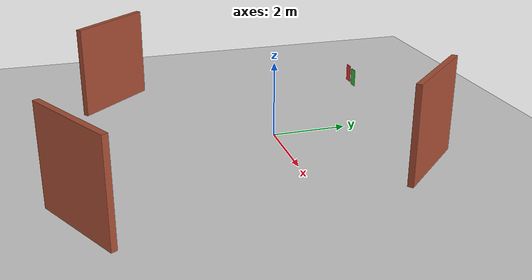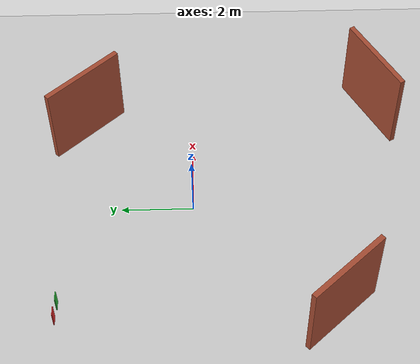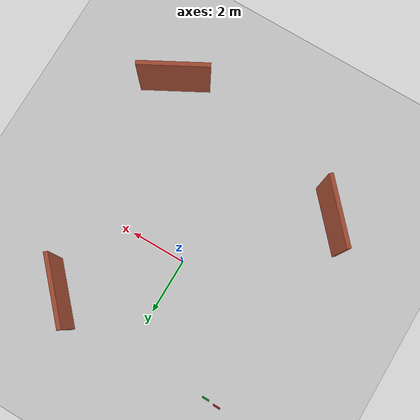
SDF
<sdf version="1.6">
 <world name="default">
  <light name="sun" type="directional">
   <pose>0 0 10 0 -0 0</pose>
   <diffuse>0.8 0.8 0.8 1</diffuse>
   <specular>0.2 0.2 0.2 1</specular>
   <attenuation>
    <range>1000</range>
    <constant>0.9</constant>
    <linear>0.01</linear>
    <quadratic>0.001</quadratic>
   </attenuation>
   <direction>-0.5 0.1 -0.9</direction>
  </light>
  <model name="ground_plane">
   <static>1</static>
   <link name="link">
    <collision name="collision">
     <geometry><plane><normal>0 0 1</normal><size>100 100</size></plane></geometry>
     <surface>
      <contact><collide_bitmask>65535</collide_bitmask></contact>
      <friction><ode><mu>100</mu><mu2>50</mu2></ode></friction>
     </surface>
    </collision>
    <visual name="visual">
     <cast_shadows>0</cast_shadows>
     <geometry><plane><normal>0 0 1</normal><size>100 100</size></plane></geometry>
     <material>
      <script><uri>file://media/materials/scripts/gazebo.material</uri><name>Gazebo/Grey</name></script>
     </material>
    </visual>
   </link>
  </model>
  <gravity>0 0 -9.8</gravity>
  <magnetic_field>6e-06 2.3e-05 -4.2e-05</magnetic_field>
  <atmosphere type="adiabatic"/>
  <physics name="default_physics" default="0" type="ode">
   <max_step_size>0.001</max_step_size>
   <real_time_factor>1</real_time_factor>
   <real_time_update_rate>1000</real_time_update_rate>
  </physics>
  <scene><ambient>0.4 0.4 0.4 1</ambient><background>0.7 0.7 0.7 1</background><shadows>1</shadows></scene>
  <audio><device>default</device></audio>
  <spherical_coordinates>
   <surface_model>EARTH_WGS84</surface_model>
   <latitude_deg>0</latitude_deg>
   <longitude_deg>0</longitude_deg>
   <elevation>0</elevation>
   <heading_deg>0</heading_deg>
  </spherical_coordinates>
  <model name="Untitledsadasd">
   <pose>2.88979 3.02821 0 0 0 -0.046921</pose>
   <link name="Wall_13">
    <collision name="Wall_13_Collision">
     <geometry><box><size>2.5 0.15 2.5</size></box></geometry>
     <pose>0 0 1.25 0 -0 0</pose>
    </collision>
    <visual name="Wall_13_Visual">
     <pose>0 0 1.25 0 -0 0</pose>
     <geometry><box><size>2.5 0.15 2.5</size></box></geometry>
     <material>
      <script><uri>file://media/materials/scripts/gazebo.material</uri><name>Gazebo/Bricks</name></script>
      <ambient>1 1 1 1</ambient>
     </material>
     <meta><layer>0</layer></meta>
    </visual>
    <pose>0 -0 0 0 -0 2.35619</pose>
   </link>
   <static>1</static>
  </model>
  <model name="Untitledsadasd_clone">
   <pose>3.46549 -5.27156 0 0 0 -1.85641</pose>
   <link name="Wall_13">
    <collision name="Wall_13_Collision">
     <geometry><box><size>2.5 0.15 2.5</size></box></geometry>
     <pose>0 0 1.25 0 -0 0</pose>
    </collision>
    <visual name="Wall_13_Visual">
     <pose>0 0 1.25 0 -0 0</pose>
     <geometry><box><size>2.5 0.15 2.5</size></box></geometry>
     <material>
      <script><uri>file://media/materials/scripts/gazebo.material</uri><name>Gazebo/Bricks</name></script>
      <ambient>1 1 1 1</ambient>
     </material>
     <meta><layer>0</layer></meta>
    </visual>
    <pose>0 -0 0 0 -0 2.35619</pose>
   </link>
   <static>1</static>
  </model>
  <model name="Untitledsadasd_clone_0">
   <pose>-3.62157 -3.79802 0 0 0 -0.046921</pose>
   <link name="Wall_13">
    <collision name="Wall_13_Collision">
     <geometry><box><size>2.5 0.15 2.5</size></box></geometry>
     <pose>0 0 1.25 0 -0 0</pose>
    </collision>
    <visual name="Wall_13_Visual">
     <pose>0 0 1.25 0 -0 0</pose>
     <geometry><box><size>2.5 0.15 2.5</size></box></geometry>
     <material>
      <script><uri>file://media/materials/scripts/gazebo.material</uri><name>Gazebo/Bricks</name></script>
      <ambient>1 1 1 1</ambient>
     </material>
     <meta><layer>0</layer></meta>
    </visual>
    <pose>0 -0 0 0 -0 2.35619</pose>
   </link>
   <static>1</static>
  </model>
  <model name="red_box">
   <static>1</static>
   <link name="box">
    <collision name="collision"><geometry><box><size>0.25 0.025 0.5</size></box></geometry></collision>
    <visual name="visual">
     <geometry><box><size>0.25 0.025 0.5</size></box></geometry>
     <material>
      <script>
       <uri>model://red_box/materials/scripts</uri>
       <uri>model://red_box/materials/textures</uri>
       <name>red_box</name>
      </script>
     </material>
    </visual>
   </link>
   <pose>-3.50726 3.62295 0.259798 0 -0 0</pose>
  </model>
  <model name="green_box">
   <static>1</static>
   <link name="box">
    <collision name="collision"><geometry><box><size>0.25 0.025 0.5</size></box></geometry></collision>
    <visual name="visual">
     <geometry><box><size>0.25 0.025 0.5</size></box></geometry>
     <material>
      <script>
       <uri>model://green_box/materials/scripts</uri>
       <uri>model://green_box/materials/textures</uri>
       <name>green_box</name>
      </script>
     </material>
    </visual>
   </link>
   <pose>-3.05658 3.58373 0.262531 0 -0 0</pose>
  </model>
 </world>
</sdf>
